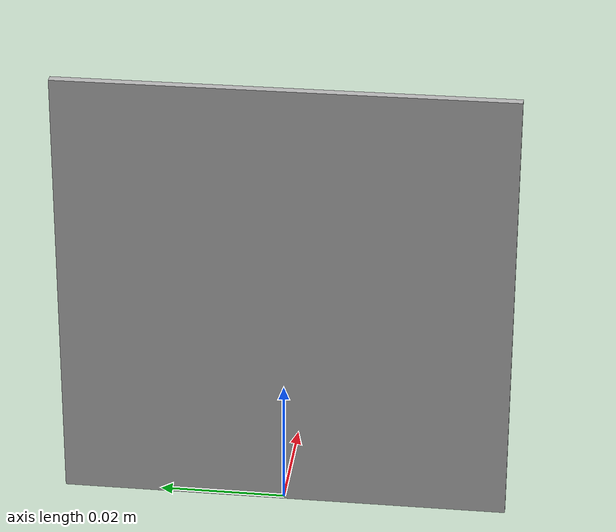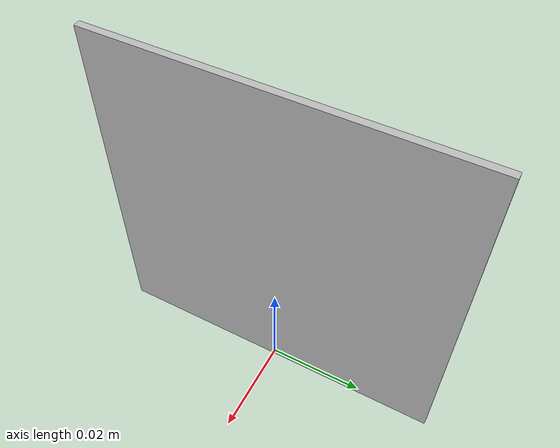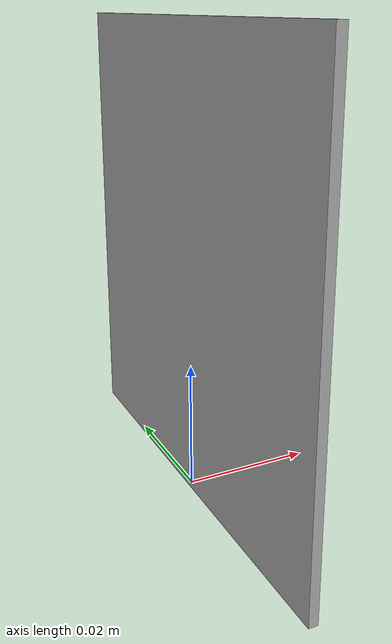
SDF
<?xml version="1.0" ?><sdf version="1.4">
  <model name="Calumet_ID_72">
    <static>true</static>
    <link name="link">
      <visual name="visual">
        <geometry>
          <mesh>
            <uri>model://calumet_id_72/meshes/Calumet_ID_72.dae</uri>
          <scale>0.142 0.142 0.142</scale></mesh>
        </geometry>
      </visual>
    </link>
  </model>
</sdf>
